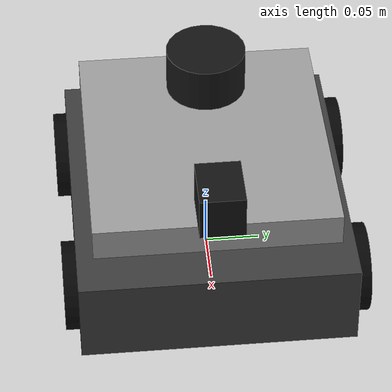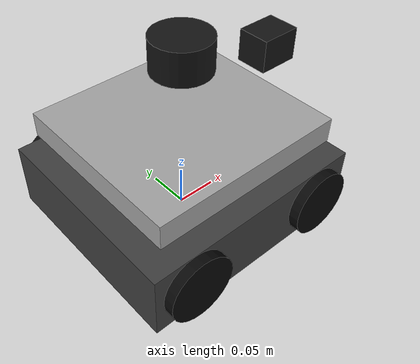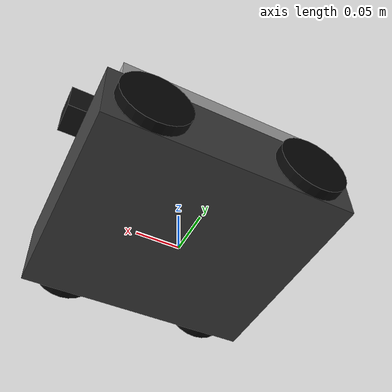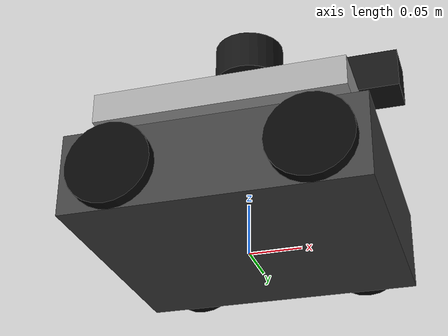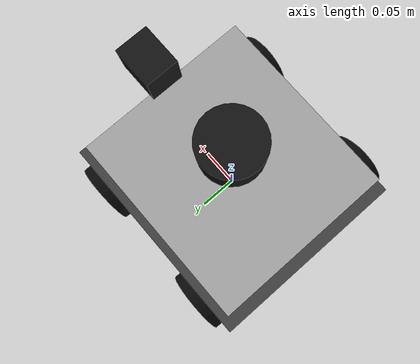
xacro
<?xml version="1.0"?>

<robot xmlns:xacro="http://www.ros.org/wiki/xacro"
       name="dojo_robot">

  <xacro:property name="chassis_length" value="0.28"/>
  <xacro:property name="chassis_width"  value="0.25"/>
  <xacro:property name="chassis_height" value="0.08"/>

  <xacro:property name="wheel_radius" value="0.04"/>
  <xacro:property name="wheel_width"  value="0.025"/>

  <!-- Distance between left and right wheel centers -->
  <xacro:property name="wheel_separation" value="0.25"/>

  <!-- Distance of wheels from robot center along X -->
  <xacro:property name="wheel_x" value="0.09"/>

  <material name="chassis_material">
    <color rgba="0.25 0.25 0.25 1"/>
  </material>

  <material name="wheel_material">
    <color rgba="0.03 0.03 0.03 1"/>
  </material>

  <material name="platform_material">
    <color rgba="0.65 0.65 0.65 1"/>
  </material>

  <material name="sensor_material">
    <color rgba="0.08 0.08 0.08 1"/>
  </material>

  <!-- BASE FOOTPRINT                                             -->

  <link name="base_footprint"/>

  <!-- MAIN CHASSIS                                               -->

  <link name="base_link">

    <visual>
      <origin xyz="0 0 0.04"/>

      <geometry>
        <box size="${chassis_length}
                   ${chassis_width}
                   ${chassis_height}"/>
      </geometry>

      <material name="chassis_material"/>
    </visual>

    <collision>
      <origin xyz="0 0 0.04"/>

      <geometry>
        <box size="${chassis_length}
                   ${chassis_width}
                   ${chassis_height}"/>
      </geometry>
    </collision>

    <inertial>
      <origin xyz="0 0 0.04"/>

      <mass value="2.5"/>

      <inertia
        ixx="0.014"
        ixy="0.0"
        ixz="0.0"
        iyy="0.019"
        iyz="0.0"
        izz="0.030"/>
    </inertial>

  </link>

  <!-- Base footprint is at ground level -->
  <joint name="base_footprint_joint"
         type="fixed">

    <parent link="base_footprint"/>
    <child link="base_link"/>

    <origin xyz="0 0 0"/>
  </joint>

  <!-- WHEEL MACRO                                                -->

  <xacro:macro name="wheel"
               params="name x y">

    <link name="${name}">

      <visual>

        <!-- Rotate cylinder so its axis points along Y -->
        <origin rpy="1.5708 0 0"/>

        <geometry>
          <cylinder
            radius="${wheel_radius}"
            length="${wheel_width}"/>
        </geometry>

        <material name="wheel_material"/>

      </visual>

      <collision>

        <origin rpy="1.5708 0 0"/>

        <geometry>
          <cylinder
            radius="${wheel_radius}"
            length="${wheel_width}"/>
        </geometry>

      </collision>

      <inertial>

        <mass value="0.12"/>

        <inertia
          ixx="0.0002"
          ixy="0"
          ixz="0"
          iyy="0.0002"
          iyz="0"
          izz="0.0002"/>

      </inertial>

    </link>

    <joint name="${name}_joint"
           type="continuous">

      <parent link="base_link"/>
      <child link="${name}"/>

      <!-- Wheel center is 40 mm above ground -->
      <origin xyz="${x} ${y} ${wheel_radius}"/>

      <axis xyz="0 1 0"/>

    </joint>

  </xacro:macro>

  <!-- FOUR WHEELS                                                -->

  <!-- Left side -->
  <xacro:wheel
    name="left_front_wheel"
    x="${wheel_x}"
    y="${wheel_separation / 2}"/>

  <xacro:wheel
    name="left_rear_wheel"
    x="-${wheel_x}"
    y="${wheel_separation / 2}"/>

  <!-- Right side -->
  <xacro:wheel
    name="right_front_wheel"
    x="${wheel_x}"
    y="-${wheel_separation / 2}"/>

  <xacro:wheel
    name="right_rear_wheel"
    x="-${wheel_x}"
    y="-${wheel_separation / 2}"/>

  <!-- TOP PLATFORM                                               -->

  <link name="top_platform">

    <visual>

      <origin xyz="0 0 0.115"/>

      <geometry>
        <box size="0.24 0.22 0.03"/>
      </geometry>

      <material name="platform_material"/>

    </visual>

    <collision>

      <origin xyz="0 0 0.115"/>

      <geometry>
        <box size="0.24 0.22 0.03"/>
      </geometry>

    </collision>

    <inertial>

      <origin xyz="0 0 0.115"/>

      <mass value="0.35"/>

      <inertia
        ixx="0.002"
        ixy="0"
        ixz="0"
        iyy="0.002"
        iyz="0"
        izz="0.003"/>

    </inertial>

  </link>

  <joint name="top_platform_joint"
         type="fixed">

    <parent link="base_link"/>
    <child link="top_platform"/>

    <origin xyz="0 0 0"/>

  </joint>

  <!-- LIDAR                                                     -->

  <link name="lidar_link">

    <visual>

      <geometry>
        <cylinder
          radius="0.035"
          length="0.04"/>
      </geometry>

      <material name="sensor_material"/>

    </visual>

    <collision>

      <geometry>
        <cylinder
          radius="0.035"
          length="0.04"/>
      </geometry>

    </collision>

  </link>

  <joint name="lidar_joint"
         type="fixed">

    <parent link="base_link"/>
    <child link="lidar_link"/>

    <origin xyz="0 0 0.21"/>

  </joint>

  <!-- CAMERA                                                     -->

  <link name="camera_link">

    <visual>

      <geometry>
        <box size="0.05 0.04 0.04"/>
      </geometry>

      <material name="sensor_material"/>

    </visual>

  </link>

  <joint name="camera_joint"
         type="fixed">

    <parent link="base_link"/>
    <child link="camera_link"/>

    <origin xyz="0.13 0 0.17"/>

  </joint>

  <!-- IMU                                                        -->

  <link name="imu_link">

    <visual>

      <geometry>
        <box size="0.035 0.035 0.02"/>
      </geometry>

    </visual>

  </link>

  <joint name="imu_joint"
         type="fixed">

    <parent link="base_link"/>
    <child link="imu_link"/>

    <origin xyz="0 0 0.10"/>

  </joint>

  <gazebo reference="lidar_link">
  <sensor name="lidar_sensor" type="gpu_lidar">
    <pose>0 0 0 0 0 0</pose>

    <topic>/dojo_robot/scan</topic>
    <update_rate>10</update_rate>

    <ray>
      <scan>
        <horizontal>
          <samples>360</samples>
          <resolution>1</resolution>
          <min_angle>-3.14159</min_angle>
          <max_angle>3.14159</max_angle>
        </horizontal>

        <vertical>
          <samples>1</samples>
          <resolution>1</resolution>
          <min_angle>0</min_angle>
          <max_angle>0</max_angle>
        </vertical>
      </scan>

      <range>
        <min>0.08</min>
        <max>12.0</max>
        <resolution>0.01</resolution>
      </range>
    </ray>

    <always_on>true</always_on>
    <visualize>true</visualize>
  </sensor>
</gazebo>

  <!-- GAZEBO HARMONIC DIFFERENTIAL DRIVE                        -->

  <gazebo>

    <plugin
      filename="gz-sim-diff-drive-system"
      name="gz::sim::systems::DiffDrive">

      <!-- Left side -->
      <left_joint>left_front_wheel_joint</left_joint>
      <left_joint>left_rear_wheel_joint</left_joint>

      <!-- Right side -->
      <right_joint>right_front_wheel_joint</right_joint>
      <right_joint>right_rear_wheel_joint</right_joint>

      <wheel_separation>${wheel_separation}</wheel_separation>
      <wheel_radius>${wheel_radius}</wheel_radius>

      <topic>cmd_vel</topic>

      <odom_topic>odom</odom_topic>

      <frame_id>odom</frame_id>
      <child_frame_id>base_footprint</child_frame_id>

      <odom_publish_frequency>30</odom_publish_frequency>

      <max_linear_velocity>0.5</max_linear_velocity>
      <max_angular_velocity>1.5</max_angular_velocity>

    </plugin>

  </gazebo>

</robot>
